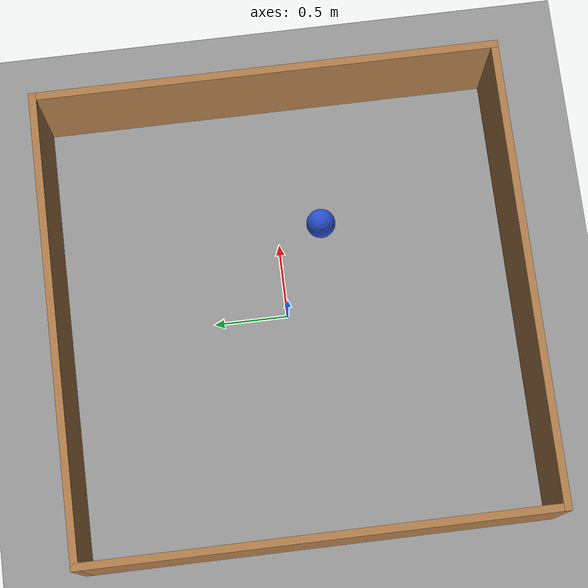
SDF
<sdf version="1.6">
 <world name="default">
  <physics name="default_physics" default="0" type="ode">
   <max_step_size>0.001</max_step_size>
   <real_time_factor>1</real_time_factor>
   <real_time_update_rate>1000</real_time_update_rate>
  </physics>
  <scene><ambient>0.4 0.4 0.4 1</ambient><background>0.7 0.7 0.7 1</background><shadows>1</shadows></scene>
  <light name="sun" type="directional">
   <pose>0 0 10 0 -0 0</pose>
   <diffuse>0.8 0.8 0.8 1</diffuse>
   <specular>0.1 0.1 0.1 1</specular>
   <attenuation>
    <range>1000</range>
    <constant>0.9</constant>
    <linear>0.01</linear>
    <quadratic>0.001</quadratic>
   </attenuation>
   <direction>-0.5 0.5 -1</direction>
  </light>
  <model name="wall3x3">
   <pose>-0.025 -0.025 0 0 -0 0</pose>
   <link name="Wall_0">
    <collision name="Wall_0_Collision">
     <geometry><box><size>3.1 0.05 0.75</size></box></geometry>
     <pose>0 0 0.375 0 -0 0</pose>
    </collision>
    <visual name="Wall_0_Visual">
     <pose>0 0 0.375 0 -0 0</pose>
     <geometry><box><size>3.1 0.05 0.75</size></box></geometry>
     <material>
      <script><uri>file://media/materials/scripts/gazebo.material</uri><name>Gazebo/Wood</name></script>
      <ambient>1 1 1 1</ambient>
     </material>
    </visual>
    <pose>0 -1.525 0 0 -0 0</pose>
   </link>
   <link name="Wall_2">
    <collision name="Wall_2_Collision">
     <geometry><box><size>3.1 0.05 0.75</size></box></geometry>
     <pose>0 0 0.375 0 -0 0</pose>
    </collision>
    <visual name="Wall_2_Visual">
     <pose>0 0 0.375 0 -0 0</pose>
     <geometry><box><size>3.1 0.05 0.75</size></box></geometry>
     <material>
      <script><uri>file://media/materials/scripts/gazebo.material</uri><name>Gazebo/Wood</name></script>
      <ambient>1 1 1 1</ambient>
     </material>
    </visual>
    <pose>1.525 0 0 0 -0 1.5708</pose>
   </link>
   <link name="Wall_4">
    <collision name="Wall_4_Collision">
     <geometry><box><size>3.1 0.05 0.75</size></box></geometry>
     <pose>0 0 0.375 0 -0 0</pose>
    </collision>
    <visual name="Wall_4_Visual">
     <pose>0 0 0.375 0 -0 0</pose>
     <geometry><box><size>3.1 0.05 0.75</size></box></geometry>
     <material>
      <script><uri>file://media/materials/scripts/gazebo.material</uri><name>Gazebo/Wood</name></script>
      <ambient>1 1 1 1</ambient>
     </material>
    </visual>
    <pose>0 1.525 0 0 -0 3.14159</pose>
   </link>
   <link name="Wall_6">
    <collision name="Wall_6_Collision">
     <geometry><box><size>3.1 0.05 0.75</size></box></geometry>
     <pose>0 0 0.375 0 -0 0</pose>
    </collision>
    <visual name="Wall_6_Visual">
     <pose>0 0 0.375 0 -0 0</pose>
     <geometry><box><size>3.1 0.05 0.75</size></box></geometry>
     <material>
      <script><uri>file://media/materials/scripts/gazebo.material</uri><name>Gazebo/Wood</name></script>
      <ambient>1 1 1 1</ambient>
     </material>
    </visual>
    <pose>-1.525 0 0 0 0 -1.5708</pose>
   </link>
   <static>1</static>
  </model>
  <model name="miro_toy_ball">
   <link name="link">
    <inertial>
     <mass>0.000419</mass>
     <inertia>
      <ixx>2.79e-06</ixx>
      <ixy>0</ixy>
      <ixz>0</ixz>
      <iyy>2.79e-06</iyy>
      <iyz>0</iyz>
      <izz>2.79e-06</izz>
     </inertia>
    </inertial>
    <collision name="collision"><geometry><sphere><radius>0.1</radius></sphere></geometry></collision>
    <visual name="visual">
     <geometry><sphere><radius>0.1</radius></sphere></geometry>
     <material><script><name>Gazebo/Blue</name><uri>__default__</uri></script></material>
    </visual>
    <velocity_decay><linear>0</linear><angular>0</angular></velocity_decay>
   </link>
   <pose>0.6 -0.3 0.1 0 -0 0</pose>
  </model>
  <gravity>0 0 -9.8</gravity>
  <magnetic_field>6e-06 2.3e-05 -4.2e-05</magnetic_field>
  <atmosphere type="adiabatic"/>
  <spherical_coordinates>
   <surface_model>EARTH_WGS84</surface_model>
   <latitude_deg>0</latitude_deg>
   <longitude_deg>0</longitude_deg>
   <elevation>0</elevation>
   <heading_deg>0</heading_deg>
  </spherical_coordinates>
  <model name="ground_plane_0">
   <static>1</static>
   <link name="link">
    <collision name="collision">
     <geometry><plane><normal>0 0 1</normal><size>100 100</size></plane></geometry>
     <surface><friction><ode><mu>100</mu><mu2>50</mu2></ode></friction></surface>
    </collision>
    <visual name="visual">
     <cast_shadows>0</cast_shadows>
     <geometry><plane><normal>0 0 1</normal><size>100 100</size></plane></geometry>
     <material>
      <script><uri>file://media/materials/scripts/gazebo.material</uri><name>Gazebo/Grey</name></script>
     </material>
    </visual>
   </link>
   <pose>1.76264 2.38385 0 0 -0 0</pose>
  </model>
 </world>
</sdf>
